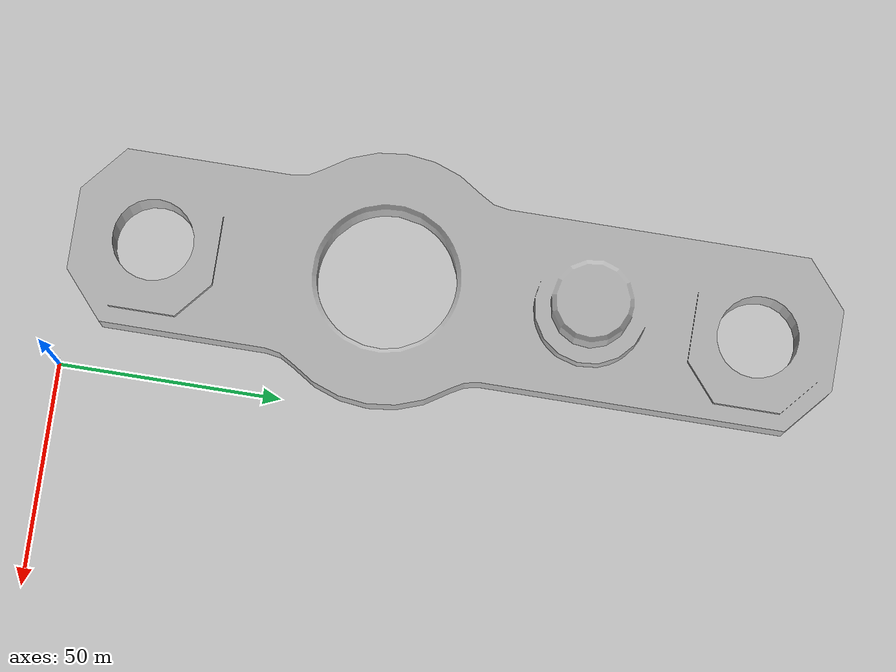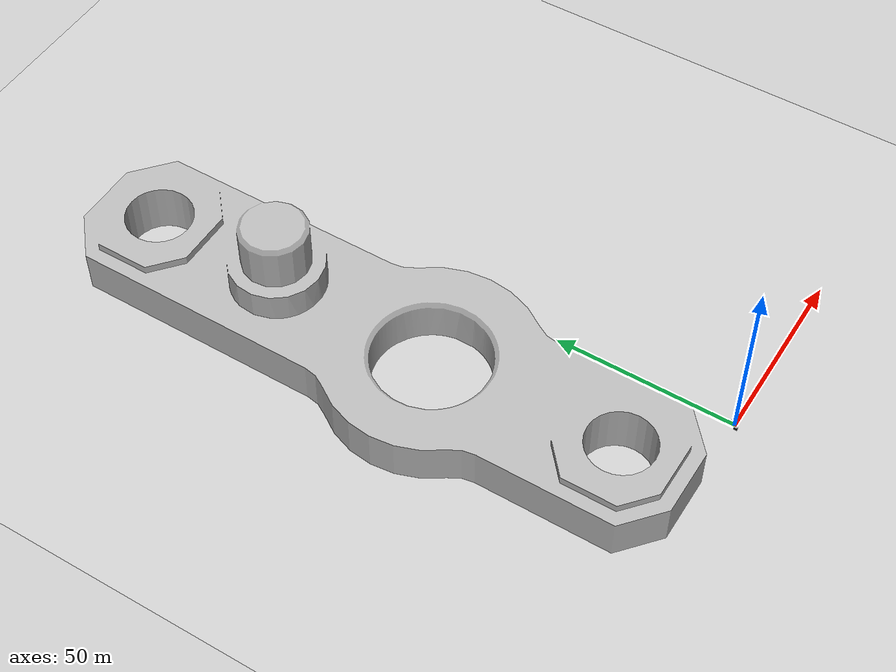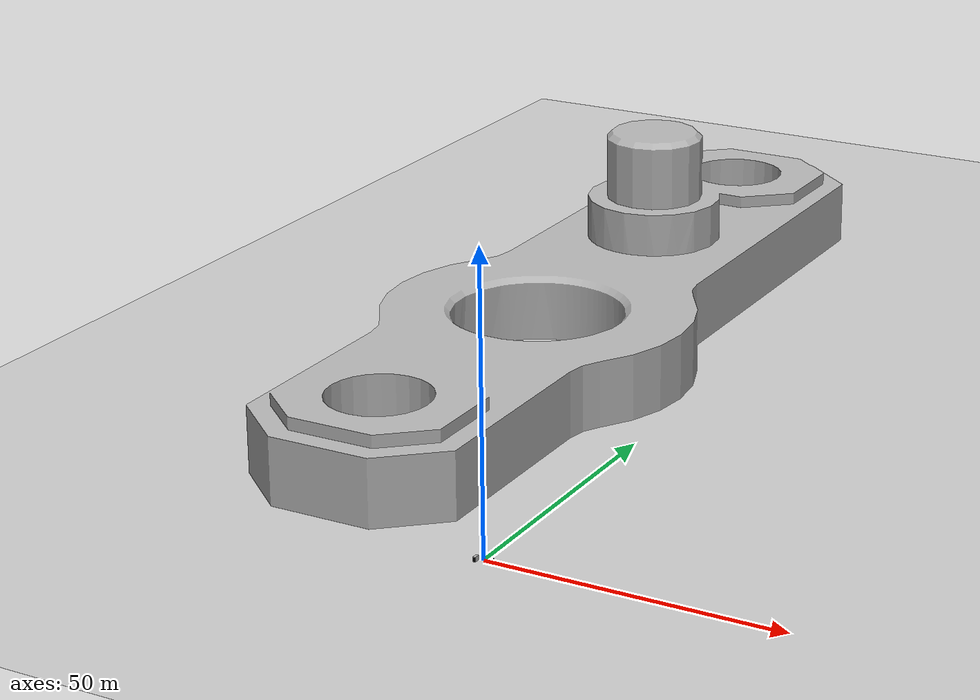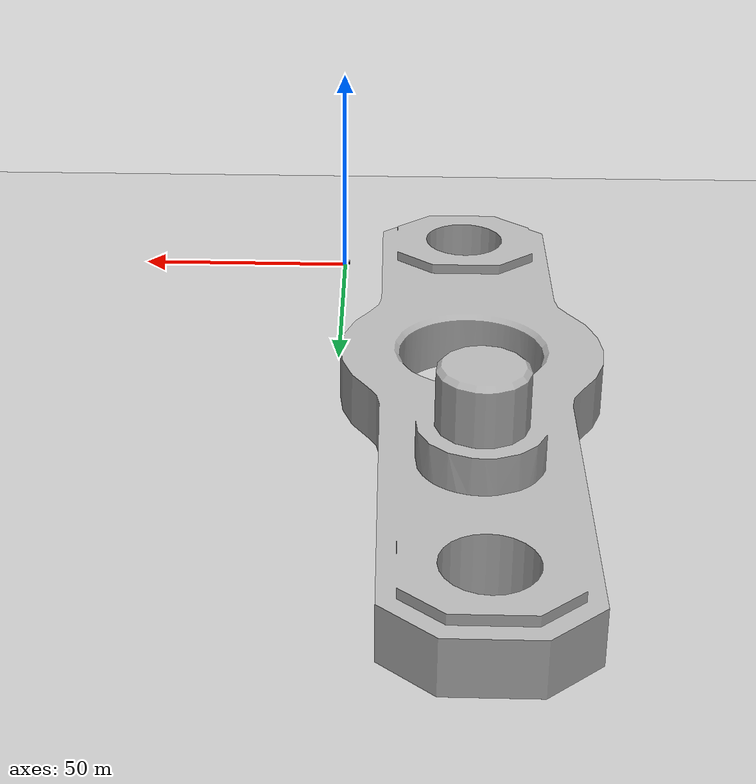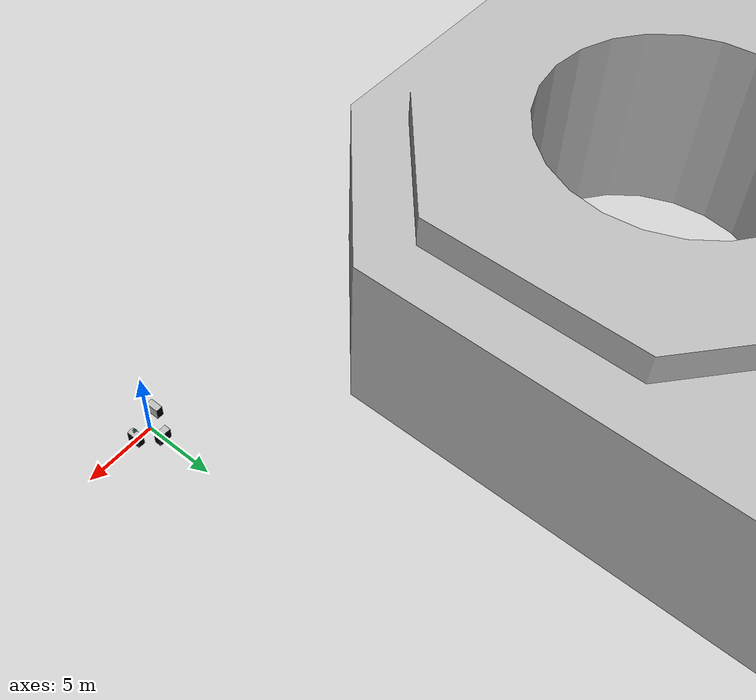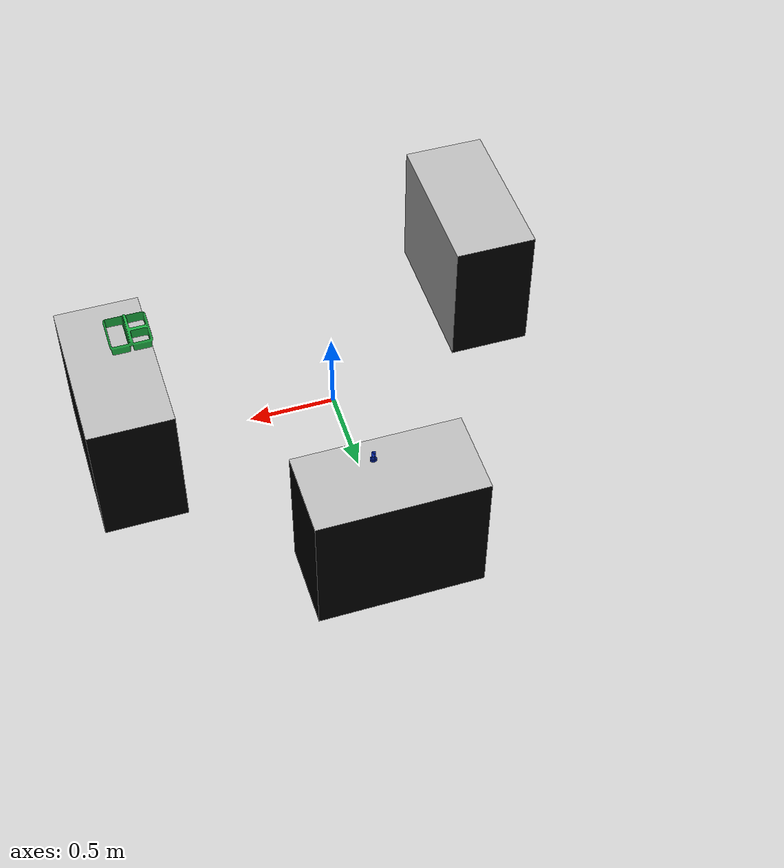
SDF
<sdf version="1.4">
 <world name="default">
  <include><uri>model://ground_plane</uri></include>
  <include>
   <uri>model://caddy_green</uri>
   <name>caddy_green1</name>
   <pose>1.109024 -0.094681 0.814290 0 0 0</pose>
  </include>
  <include>
   <uri>model://gearbox_bolt</uri>
   <name>gearbox_bolt1</name>
   <pose>0.104571 1.127 0.81 0 0 0</pose>
  </include>
  <include>
   <uri>model://gearbox_bolt</uri>
   <name>gearbox_bolt2</name>
   <pose>0.109393 1.127 0.81 0 0 0</pose>
  </include>
  <include>
   <uri>model://gearbox_top</uri>
   <name>gearbox_top1</name>
   <pose>-1.0 -0.62 0.977855 0 0 1.57</pose>
  </include>
  <include>
   <uri>model://fetchit_table</uri>
   <name>screw_bin_pick_station</name>
   <pose>0.04929 1.22163 0.0 0 0 0</pose>
  </include>
  <include>
   <uri>model://fetchit_table</uri>
   <name>kit_station</name>
   <pose>1.23491 0.087 0.0 0 0 -1.57</pose>
  </include>
  <include>
   <uri>model://fetchit_table</uri>
   <name>gearbox_pick_station</name>
   <pose>-1.03 -0.60962 0.0 0 0 1.57</pose>
  </include>
  <light name="user_point_light_0" type="point">
   <pose>1.0 1.0 3.5 0 0 0</pose>
   <diffuse>0.7 0.7 0.7 1</diffuse>
   <specular>0.1 0.1 0.1 1</specular>
   <attenuation>
    <range>10</range>
    <constant>0.5</constant>
    <linear>0.01</linear>
    <quadratic>0.001</quadratic>
   </attenuation>
   <cast_shadows>0</cast_shadows>
   <direction>0 0 -1</direction>
  </light>
  <light name="user_point_light_1" type="point">
   <pose>-1.0 1.0 3.5 0 0 0</pose>
   <diffuse>0.7 0.7 0.7 1</diffuse>
   <specular>0.1 0.1 0.1 1</specular>
   <attenuation>
    <range>10</range>
    <constant>0.5</constant>
    <linear>0.01</linear>
    <quadratic>0.001</quadratic>
   </attenuation>
   <cast_shadows>0</cast_shadows>
   <direction>0 0 -1</direction>
  </light>
  <light name="user_point_light_2" type="point">
   <pose>-1.0 -1.0 3.5 0 0 0</pose>
   <diffuse>0.7 0.7 0.7 1</diffuse>
   <specular>0.1 0.1 0.1 1</specular>
   <attenuation>
    <range>10</range>
    <constant>0.5</constant>
    <linear>0.01</linear>
    <quadratic>0.001</quadratic>
   </attenuation>
   <cast_shadows>0</cast_shadows>
   <direction>0 0 -1</direction>
  </light>
  <light name="user_point_light_3" type="point">
   <pose>1.0 -1.0 3.5 0 0 0</pose>
   <diffuse>0.7 0.7 0.7 1</diffuse>
   <specular>0.1 0.1 0.1 1</specular>
   <attenuation>
    <range>10</range>
    <constant>0.5</constant>
    <linear>0.01</linear>
    <quadratic>0.001</quadratic>
   </attenuation>
   <cast_shadows>0</cast_shadows>
   <direction>0 0 -1</direction>
  </light>
 </world>
</sdf>

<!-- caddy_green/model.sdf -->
<sdf version='1.4'>
  <model name="caddy_green">
      <static>0</static>
      <link name='link'>
        <inertial>
          <mass>0.0680389</mass>
          <inertia>
            <ixx>0.00040636575898</ixx>
            <ixy>0.000000</ixy>
            <ixz>0.000000</ixz>
            <iyy>0.00040636575898</iyy>
            <iyz>0.000000</iyz>
            <izz>0.000625974918075</izz>
          </inertia>
        </inertial>
        <collision name='collision'>
          <geometry>
            <mesh>
              <uri>model://romanoff_small_utility_caddy/meshes/Romanoff_Small_Utility_Caddy_cof.stl</uri>
              <scale>1 1 1</scale>
            </mesh>
          </geometry>
          <surface>
            <friction>
              <ode>
                <mu>1.0</mu>
                <mu2>1.0</mu2>
              </ode>
            </friction>
          </surface>
        </collision>

        <visual name='visual'>
          <geometry>
            <mesh>
              <uri>model://romanoff_small_utility_caddy/meshes/Romanoff_Small_Utility_Caddy_cof_green.dae</uri>
              <scale>1 1 1</scale>
            </mesh>
          </geometry>
        </visual>
        <velocity_decay>
          <linear>0.000000</linear>
          <angular>0.000000</angular>
        </velocity_decay>
        <self_collide>0</self_collide>
        <kinematic>0</kinematic>
        <gravity>1</gravity>
      </link>
  </model>
</sdf>

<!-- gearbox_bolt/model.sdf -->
<sdf version='1.4'>
  <model name="gearbox_bolt">
      <static>0</static>
      <link name='link'>
        <inertial>
          <mass>0.0592855</mass>
          <inertia>
            <ixx>2.31818050784e-05</ixx>
            <ixy>0.000000</ixy>
            <ixz>0.000000</ixz>
            <iyy>2.31851837098e-05</iyy>
            <iyz>0.000000</iyz>
            <izz>8.88944636856e-06</izz>
          </inertia>
        </inertial>
        <collision name='collision'>
          <geometry>
            <mesh>
              <uri>model://gearbox_bolt/meshes/gear_bolt_simple.stl</uri>
              <scale>1 1 1</scale>
            </mesh>
          </geometry>
          <surface>
            <friction>
              <ode>
                <mu>30.0</mu>
                <mu2>30.0</mu2>
              </ode>
            </friction>
          </surface>
        </collision>
        <visual name='visual'>
          <geometry>
            <mesh>
              <uri>model://gearbox_bolt/meshes/screw_v1.dae</uri>
              <scale>1 1 1</scale>
            </mesh>
          </geometry>
        </visual>
        <velocity_decay>
          <linear>0.000000</linear>
          <angular>0.000000</angular>
        </velocity_decay>
        <self_collide>0</self_collide>
        <kinematic>0</kinematic>
        <gravity>1</gravity>
      </link>
  </model>
</sdf>

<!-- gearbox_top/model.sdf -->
<sdf version='1.4'>
  <model name="gearbox_top">
      <static>0</static>
      <link name='link'>
        <inertial>
          <mass>0.2282587</mass>
          <inertia>
            <ixx>4.84526132205e-05</ixx>
            <ixy>0.000000</ixy>
            <ixz>0.000000</ixz>
            <iyy>0.000571913204992</iyy>
            <iyz>0.000000</iyz>
            <izz>0.000580776512074</izz>
          </inertia>
        </inertial>
        <collision name='collision'>
          <geometry>
            <mesh>
              <uri>model://gearbox_top/meshes/gearBoxTop_v3.stl</uri>
              <scale>1 1 1</scale>
            </mesh>
          </geometry>
          <surface>
            <friction>
              <ode>
                <mu>30.0</mu>
                <mu2>30.0</mu2>
              </ode>
            </friction>
          </surface>
        </collision>
        <visual name='visual'>
          <geometry>
            <mesh>
              <uri>model://gearbox_top/meshes/gearBoxTop_v3.dae</uri>
              <scale>1 1 1</scale>
            </mesh>
          </geometry>
        </visual>
        <velocity_decay>
          <linear>0.000000</linear>
          <angular>0.000000</angular>
        </velocity_decay>
        <self_collide>0</self_collide>
        <kinematic>0</kinematic>
        <gravity>1</gravity>
      </link>
  </model>
</sdf>

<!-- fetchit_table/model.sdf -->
<sdf version='1.4'>
  <model name="fetchit_table">
      <static>1</static>
      <link name='link'>
        <inertial>
          <mass>0.0592855</mass>
          <inertia>
            <ixx>2.31818050784e-05</ixx>
            <ixy>0.000000</ixy>
            <ixz>0.000000</ixz>
            <iyy>2.31851837098e-05</iyy>
            <iyz>0.000000</iyz>
            <izz>8.88944636856e-06</izz>
          </inertia>
        </inertial>
        <collision name='collision'>
          <geometry>
            <mesh>
              <uri>model://fetchit_table/meshes/fetchit_table.dae</uri>
              <scale>1 1 1</scale>
            </mesh>
          </geometry>
          <surface>
            <friction>
              <ode>
                <mu>30.0</mu>
                <mu2>30.0</mu2>
              </ode>
            </friction>
          </surface>
        </collision>
        <visual name='visual'>
          <geometry>
            <mesh>
              <uri>model://fetchit_table/meshes/fetchit_table.dae</uri>
              <scale>1 1 1</scale>
            </mesh>
          </geometry>
        </visual>
        <velocity_decay>
          <linear>0.000000</linear>
          <angular>0.000000</angular>
        </velocity_decay>
        <self_collide>0</self_collide>
        <kinematic>0</kinematic>
        <gravity>1</gravity>
      </link>
  </model>
</sdf>
